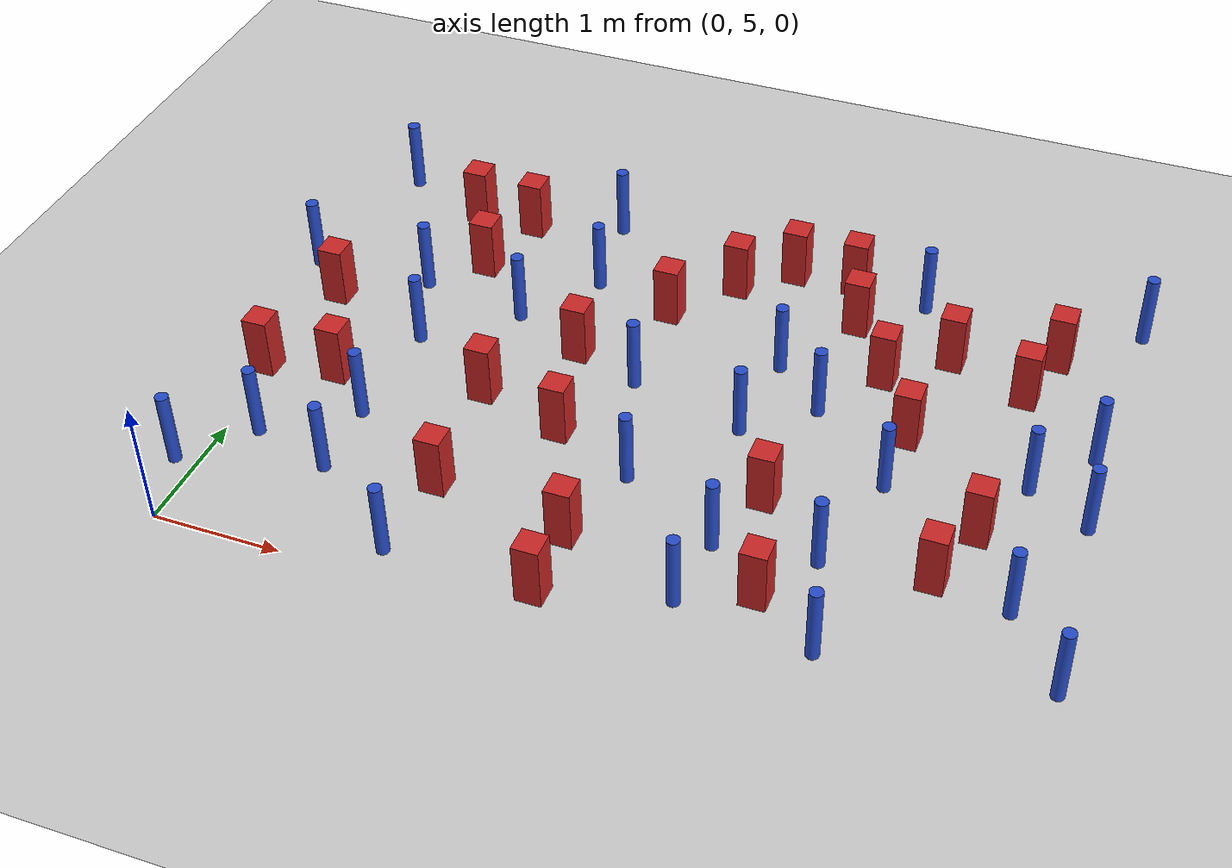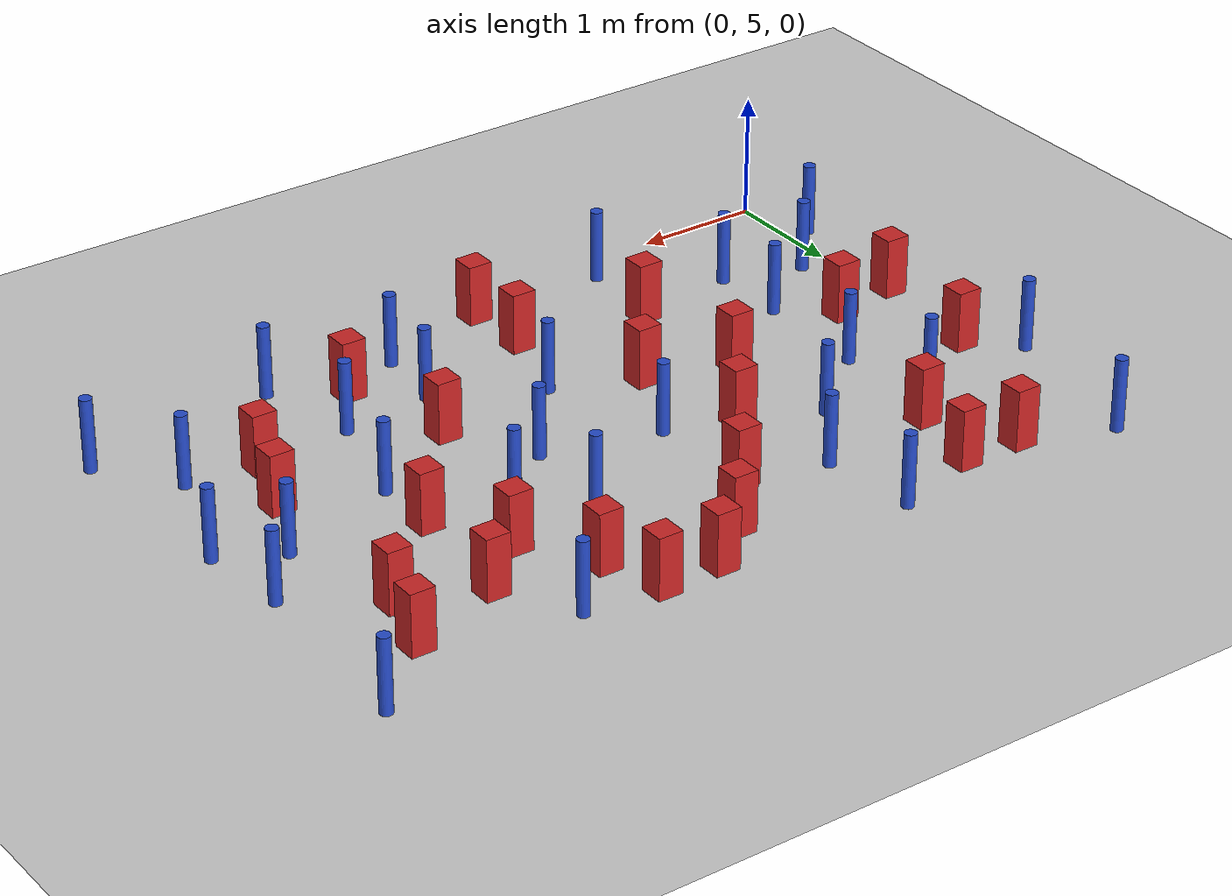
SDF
<sdf version="1.6">
 <world name="default">
  <model name="ground_plane">
   <static>1</static>
   <link name="link">
    <collision name="collision">
     <geometry><plane><normal>0 0 1</normal><size>100 100</size></plane></geometry>
     <surface><friction><ode><mu>100</mu><mu2>50</mu2></ode></friction></surface>
    </collision>
    <visual name="visual">
     <cast_shadows>0</cast_shadows>
     <geometry><plane><normal>0 0 1</normal><size>100 100</size></plane></geometry>
     <material>
      <ambient>1.0 1.0 1.0 1.0</ambient>
      <diffuse>0.8 0.8 0.8 1.0</diffuse>
      <specular>0.01 0.01 0.01 1.000000</specular>
     </material>
    </visual>
   </link>
  </model>
  <model name="square_post_obstacle0">
   <static>true</static>
   <pose>0.0412919475653 7.74487756487 -4.36207812815e-07 3.75137919937e-06 9.77721102514e-07 2.47381364184e-05</pose>
   <link name="link">
    <pose>0 0 0.25 0 -0 0</pose>
    <inertial>
     <mass>100</mass>
     <inertia>
      <ixx>0.166667</ixx>
      <ixy>0</ixy>
      <ixz>0</ixz>
      <iyy>0.166667</iyy>
      <iyz>0</iyz>
      <izz>0.166667</izz>
     </inertia>
    </inertial>
    <collision name="collision"><geometry><box><size>.2 .2 .5</size></box></geometry></collision>
    <visual name="visual">
     <geometry><box><size>.2 .2 .5</size></box></geometry>
     <material>
      <script><name>Gazebo/Red</name><uri>file://media/materials/scripts/gazebo.material</uri></script>
     </material>
    </visual>
   </link>
  </model>
  <model name="pole_obstacle18">
   <static>true</static>
   <pose>2.68279950998 7.52873391197 -3.09024884793e-07 -7.19054271912e-07 -2.11315075134e-07 -1.93935509266e-07</pose>
   <link name="link">
    <pose>0 0 0.3 0 -0 0</pose>
    <inertial>
     <mass>1</mass>
     <inertia><ixx>0.145833</ixx><ixy>0</ixy><ixz>0</ixz><iyy>0.145833</iyy><iyz>0</iyz><izz>0.125</izz></inertia>
    </inertial>
    <collision name="collision">
     <geometry><cylinder><radius>0.05</radius><length>.6</length></cylinder></geometry>
    </collision>
    <visual name="visual">
     <geometry><cylinder><radius>0.05</radius><length>.6</length></cylinder></geometry>
     <material>
      <script><name>Gazebo/Blue</name><uri>file://media/materials/scripts/gazebo.material</uri></script>
     </material>
    </visual>
   </link>
  </model>
  <model name="pole_obstacle19">
   <static>true</static>
   <pose>0.890356789244 5.87134559342 -3.09024884793e-07 -7.19054271912e-07 -2.11315075129e-07 -1.93935509261e-07</pose>
   <link name="link">
    <pose>0 0 0.3 0 -0 0</pose>
    <inertial>
     <mass>1</mass>
     <inertia><ixx>0.145833</ixx><ixy>0</ixy><ixz>0</ixz><iyy>0.145833</iyy><iyz>0</iyz><izz>0.125</izz></inertia>
    </inertial>
    <collision name="collision">
     <geometry><cylinder><radius>0.05</radius><length>.6</length></cylinder></geometry>
    </collision>
    <visual name="visual">
     <geometry><cylinder><radius>0.05</radius><length>.6</length></cylinder></geometry>
     <material>
      <script><name>Gazebo/Blue</name><uri>file://media/materials/scripts/gazebo.material</uri></script>
     </material>
    </visual>
   </link>
  </model>
  <model name="square_post_obstacle15">
   <static>true</static>
   <pose>5.34885255256 6.27011187974 -4.36207812815e-07 3.75137919937e-06 9.77721102514e-07 2.47381364184e-05</pose>
   <link name="link">
    <pose>0 0 0.25 0 -0 0</pose>
    <inertial>
     <mass>100</mass>
     <inertia>
      <ixx>0.166667</ixx>
      <ixy>0</ixy>
      <ixz>0</ixz>
      <iyy>0.166667</iyy>
      <iyz>0</iyz>
      <izz>0.166667</izz>
     </inertia>
    </inertial>
    <collision name="collision"><geometry><box><size>.2 .2 .5</size></box></geometry></collision>
    <visual name="visual">
     <geometry><box><size>.2 .2 .5</size></box></geometry>
     <material>
      <script><name>Gazebo/Red</name><uri>file://media/materials/scripts/gazebo.material</uri></script>
     </material>
    </visual>
   </link>
  </model>
  <model name="pole_obstacle29">
   <static>true</static>
   <pose>5.78170784159 7.39839750086 -3.09024884793e-07 -7.19054271911e-07 -2.1131507516e-07 -1.93935509277e-07</pose>
   <link name="link">
    <pose>0 0 0.3 0 -0 0</pose>
    <inertial>
     <mass>1</mass>
     <inertia><ixx>0.145833</ixx><ixy>0</ixy><ixz>0</ixz><iyy>0.145833</iyy><iyz>0</iyz><izz>0.125</izz></inertia>
    </inertial>
    <collision name="collision">
     <geometry><cylinder><radius>0.05</radius><length>.6</length></cylinder></geometry>
    </collision>
    <visual name="visual">
     <geometry><cylinder><radius>0.05</radius><length>.6</length></cylinder></geometry>
     <material>
      <script><name>Gazebo/Blue</name><uri>file://media/materials/scripts/gazebo.material</uri></script>
     </material>
    </visual>
   </link>
  </model>
  <model name="square_post_obstacle27">
   <static>true</static>
   <pose>2.35359389487 6.81142448107 -4.36207812815e-07 3.75137919937e-06 9.77721102514e-07 2.47381364184e-05</pose>
   <link name="link">
    <pose>0 0 0.25 0 -0 0</pose>
    <inertial>
     <mass>100</mass>
     <inertia>
      <ixx>0.166667</ixx>
      <ixy>0</ixy>
      <ixz>0</ixz>
      <iyy>0.166667</iyy>
      <iyz>0</iyz>
      <izz>0.166667</izz>
     </inertia>
    </inertial>
    <collision name="collision"><geometry><box><size>.2 .2 .5</size></box></geometry></collision>
    <visual name="visual">
     <geometry><box><size>.2 .2 .5</size></box></geometry>
     <material>
      <script><name>Gazebo/Red</name><uri>file://media/materials/scripts/gazebo.material</uri></script>
     </material>
    </visual>
   </link>
  </model>
  <model name="square_post_obstacle28">
   <static>true</static>
   <pose>1.65492535848 7.02543720147 -4.36207812815e-07 3.75137919937e-06 9.77721102514e-07 2.47381364184e-05</pose>
   <link name="link">
    <pose>0 0 0.25 0 -0 0</pose>
    <inertial>
     <mass>100</mass>
     <inertia>
      <ixx>0.166667</ixx>
      <ixy>0</ixy>
      <ixz>0</ixz>
      <iyy>0.166667</iyy>
      <iyz>0</iyz>
      <izz>0.166667</izz>
     </inertia>
    </inertial>
    <collision name="collision"><geometry><box><size>.2 .2 .5</size></box></geometry></collision>
    <visual name="visual">
     <geometry><box><size>.2 .2 .5</size></box></geometry>
     <material>
      <script><name>Gazebo/Red</name><uri>file://media/materials/scripts/gazebo.material</uri></script>
     </material>
    </visual>
   </link>
  </model>
  <model name="square_post_obstacle29">
   <static>true</static>
   <pose>2.8286833973 5.2454532795 -4.36207812815e-07 3.75137919937e-06 9.77721102514e-07 2.47381364184e-05</pose>
   <link name="link">
    <pose>0 0 0.25 0 -0 0</pose>
    <inertial>
     <mass>100</mass>
     <inertia>
      <ixx>0.166667</ixx>
      <ixy>0</ixy>
      <ixz>0</ixz>
      <iyy>0.166667</iyy>
      <iyz>0</iyz>
      <izz>0.166667</izz>
     </inertia>
    </inertial>
    <collision name="collision"><geometry><box><size>.2 .2 .5</size></box></geometry></collision>
    <visual name="visual">
     <geometry><box><size>.2 .2 .5</size></box></geometry>
     <material>
      <script><name>Gazebo/Red</name><uri>file://media/materials/scripts/gazebo.material</uri></script>
     </material>
    </visual>
   </link>
  </model>
  <model name="square_post_obstacle35">
   <static>true</static>
   <pose>5.54072011842 8.36594991279 -4.36207812815e-07 3.75137919937e-06 9.77721102514e-07 2.47381364184e-05</pose>
   <link name="link">
    <pose>0 0 0.25 0 -0 0</pose>
    <inertial>
     <mass>100</mass>
     <inertia>
      <ixx>0.166667</ixx>
      <ixy>0</ixy>
      <ixz>0</ixz>
      <iyy>0.166667</iyy>
      <iyz>0</iyz>
      <izz>0.166667</izz>
     </inertia>
    </inertial>
    <collision name="collision"><geometry><box><size>.2 .2 .5</size></box></geometry></collision>
    <visual name="visual">
     <geometry><box><size>.2 .2 .5</size></box></geometry>
     <material>
      <script><name>Gazebo/Red</name><uri>file://media/materials/scripts/gazebo.material</uri></script>
     </material>
    </visual>
   </link>
  </model>
  <model name="square_post_obstacle37">
   <static>true</static>
   <pose>1.01999393397 8.48975095778 -4.36207812815e-07 3.75137919937e-06 9.77721102514e-07 2.47381364184e-05</pose>
   <link name="link">
    <pose>0 0 0.25 0 -0 0</pose>
    <inertial>
     <mass>100</mass>
     <inertia>
      <ixx>0.166667</ixx>
      <ixy>0</ixy>
      <ixz>0</ixz>
      <iyy>0.166667</iyy>
      <iyz>0</iyz>
      <izz>0.166667</izz>
     </inertia>
    </inertial>
    <collision name="collision"><geometry><box><size>.2 .2 .5</size></box></geometry></collision>
    <visual name="visual">
     <geometry><box><size>.2 .2 .5</size></box></geometry>
     <material>
      <script><name>Gazebo/Red</name><uri>file://media/materials/scripts/gazebo.material</uri></script>
     </material>
    </visual>
   </link>
  </model>
  <model name="square_post_obstacle40">
   <static>true</static>
   <pose>2.14338092535 7.71940443186 -4.36207812815e-07 3.75137919937e-06 9.77721102514e-07 2.47381364184e-05</pose>
   <link name="link">
    <pose>0 0 0.25 0 -0 0</pose>
    <inertial>
     <mass>100</mass>
     <inertia>
      <ixx>0.166667</ixx>
      <ixy>0</ixy>
      <ixz>0</ixz>
      <iyy>0.166667</iyy>
      <iyz>0</iyz>
      <izz>0.166667</izz>
     </inertia>
    </inertial>
    <collision name="collision"><geometry><box><size>.2 .2 .5</size></box></geometry></collision>
    <visual name="visual">
     <geometry><box><size>.2 .2 .5</size></box></geometry>
     <material>
      <script><name>Gazebo/Red</name><uri>file://media/materials/scripts/gazebo.material</uri></script>
     </material>
    </visual>
   </link>
  </model>
  <model name="pole_obstacle58">
   <static>true</static>
   <pose>1.68124011507 5.26321317155 -3.09024884793e-07 -7.19054271912e-07 -2.11315075134e-07 -1.93935509265e-07</pose>
   <link name="link">
    <pose>0 0 0.3 0 -0 0</pose>
    <inertial>
     <mass>1</mass>
     <inertia><ixx>0.145833</ixx><ixy>0</ixy><ixz>0</ixz><iyy>0.145833</iyy><iyz>0</iyz><izz>0.125</izz></inertia>
    </inertial>
    <collision name="collision">
     <geometry><cylinder><radius>0.05</radius><length>.6</length></cylinder></geometry>
    </collision>
    <visual name="visual">
     <geometry><cylinder><radius>0.05</radius><length>.6</length></cylinder></geometry>
     <material>
      <script><name>Gazebo/Blue</name><uri>file://media/materials/scripts/gazebo.material</uri></script>
     </material>
    </visual>
   </link>
  </model>
  <model name="pole_obstacle64">
   <static>true</static>
   <pose>-0.183026312813 5.58175883357 -3.09024884793e-07 -7.19054271912e-07 -2.11315075131e-07 -1.93935509264e-07</pose>
   <link name="link">
    <pose>0 0 0.3 0 -0 0</pose>
    <inertial>
     <mass>1</mass>
     <inertia><ixx>0.145833</ixx><ixy>0</ixy><ixz>0</ixz><iyy>0.145833</iyy><iyz>0</iyz><izz>0.125</izz></inertia>
    </inertial>
    <collision name="collision">
     <geometry><cylinder><radius>0.05</radius><length>.6</length></cylinder></geometry>
    </collision>
    <visual name="visual">
     <geometry><cylinder><radius>0.05</radius><length>.6</length></cylinder></geometry>
     <material>
      <script><name>Gazebo/Blue</name><uri>file://media/materials/scripts/gazebo.material</uri></script>
     </material>
    </visual>
   </link>
  </model>
  <model name="pole_obstacle67">
   <static>true</static>
   <pose>3.61485914153 7.29139319255 -3.09024884793e-07 -7.19054271912e-07 -2.11315075134e-07 -1.93935509266e-07</pose>
   <link name="link">
    <pose>0 0 0.3 0 -0 0</pose>
    <inertial>
     <mass>1</mass>
     <inertia><ixx>0.145833</ixx><ixy>0</ixy><ixz>0</ixz><iyy>0.145833</iyy><iyz>0</iyz><izz>0.125</izz></inertia>
    </inertial>
    <collision name="collision">
     <geometry><cylinder><radius>0.05</radius><length>.6</length></cylinder></geometry>
    </collision>
    <visual name="visual">
     <geometry><cylinder><radius>0.05</radius><length>.6</length></cylinder></geometry>
     <material>
      <script><name>Gazebo/Blue</name><uri>file://media/materials/scripts/gazebo.material</uri></script>
     </material>
    </visual>
   </link>
  </model>
  <model name="square_post_obstacle55">
   <static>true</static>
   <pose>0.494893646037 6.8507930311 -4.36207812815e-07 3.75137919937e-06 9.77721102514e-07 2.47381364184e-05</pose>
   <link name="link">
    <pose>0 0 0.25 0 -0 0</pose>
    <inertial>
     <mass>100</mass>
     <inertia>
      <ixx>0.166667</ixx>
      <ixy>0</ixy>
      <ixz>0</ixz>
      <iyy>0.166667</iyy>
      <iyz>0</iyz>
      <izz>0.166667</izz>
     </inertia>
    </inertial>
    <collision name="collision"><geometry><box><size>.2 .2 .5</size></box></geometry></collision>
    <visual name="visual">
     <geometry><box><size>.2 .2 .5</size></box></geometry>
     <material>
      <script><name>Gazebo/Red</name><uri>file://media/materials/scripts/gazebo.material</uri></script>
     </material>
    </visual>
   </link>
  </model>
  <model name="square_post_obstacle57">
   <static>true</static>
   <pose>3.4485562512 9.24732449354 -4.36207812815e-07 3.75137919937e-06 9.77721102514e-07 2.47381364184e-05</pose>
   <link name="link">
    <pose>0 0 0.25 0 -0 0</pose>
    <inertial>
     <mass>100</mass>
     <inertia>
      <ixx>0.166667</ixx>
      <ixy>0</ixy>
      <ixz>0</ixz>
      <iyy>0.166667</iyy>
      <iyz>0</iyz>
      <izz>0.166667</izz>
     </inertia>
    </inertial>
    <collision name="collision"><geometry><box><size>.2 .2 .5</size></box></geometry></collision>
    <visual name="visual">
     <geometry><box><size>.2 .2 .5</size></box></geometry>
     <material>
      <script><name>Gazebo/Red</name><uri>file://media/materials/scripts/gazebo.material</uri></script>
     </material>
    </visual>
   </link>
  </model>
  <model name="square_post_obstacle62">
   <static>true</static>
   <pose>1.74880818578 5.98662325395 -4.36207812815e-07 3.75137919937e-06 9.77721102514e-07 2.47381364184e-05</pose>
   <link name="link">
    <pose>0 0 0.25 0 -0 0</pose>
    <inertial>
     <mass>100</mass>
     <inertia>
      <ixx>0.166667</ixx>
      <ixy>0</ixy>
      <ixz>0</ixz>
      <iyy>0.166667</iyy>
      <iyz>0</iyz>
      <izz>0.166667</izz>
     </inertia>
    </inertial>
    <collision name="collision"><geometry><box><size>.2 .2 .5</size></box></geometry></collision>
    <visual name="visual">
     <geometry><box><size>.2 .2 .5</size></box></geometry>
     <material>
      <script><name>Gazebo/Red</name><uri>file://media/materials/scripts/gazebo.material</uri></script>
     </material>
    </visual>
   </link>
  </model>
  <model name="square_post_obstacle70">
   <static>true</static>
   <pose>4.01961030803 6.63754758699 -4.36207812815e-07 3.75137919937e-06 9.77721102514e-07 2.47381364184e-05</pose>
   <link name="link">
    <pose>0 0 0.25 0 -0 0</pose>
    <inertial>
     <mass>100</mass>
     <inertia>
      <ixx>0.166667</ixx>
      <ixy>0</ixy>
      <ixz>0</ixz>
      <iyy>0.166667</iyy>
      <iyz>0</iyz>
      <izz>0.166667</izz>
     </inertia>
    </inertial>
    <collision name="collision"><geometry><box><size>.2 .2 .5</size></box></geometry></collision>
    <visual name="visual">
     <geometry><box><size>.2 .2 .5</size></box></geometry>
     <material>
      <script><name>Gazebo/Red</name><uri>file://media/materials/scripts/gazebo.material</uri></script>
     </material>
    </visual>
   </link>
  </model>
  <model name="pole_obstacle82">
   <static>true</static>
   <pose>3.74965852438 5.49984510414 -3.09024884793e-07 -7.19054271912e-07 -2.11315075134e-07 -1.93935509266e-07</pose>
   <link name="link">
    <pose>0 0 0.3 0 -0 0</pose>
    <inertial>
     <mass>1</mass>
     <inertia><ixx>0.145833</ixx><ixy>0</ixy><ixz>0</ixz><iyy>0.145833</iyy><iyz>0</iyz><izz>0.125</izz></inertia>
    </inertial>
    <collision name="collision">
     <geometry><cylinder><radius>0.05</radius><length>.6</length></cylinder></geometry>
    </collision>
    <visual name="visual">
     <geometry><cylinder><radius>0.05</radius><length>.6</length></cylinder></geometry>
     <material>
      <script><name>Gazebo/Blue</name><uri>file://media/materials/scripts/gazebo.material</uri></script>
     </material>
    </visual>
   </link>
  </model>
  <model name="pole_obstacle83">
   <static>true</static>
   <pose>-0.0627920377925 9.40811231601 -3.09024884793e-07 -7.19054271911e-07 -2.11315075159e-07 -1.93935509278e-07</pose>
   <link name="link">
    <pose>0 0 0.3 0 -0 0</pose>
    <inertial>
     <mass>1</mass>
     <inertia><ixx>0.145833</ixx><ixy>0</ixy><ixz>0</ixz><iyy>0.145833</iyy><iyz>0</iyz><izz>0.125</izz></inertia>
    </inertial>
    <collision name="collision">
     <geometry><cylinder><radius>0.05</radius><length>.6</length></cylinder></geometry>
    </collision>
    <visual name="visual">
     <geometry><cylinder><radius>0.05</radius><length>.6</length></cylinder></geometry>
     <material>
      <script><name>Gazebo/Blue</name><uri>file://media/materials/scripts/gazebo.material</uri></script>
     </material>
    </visual>
   </link>
  </model>
  <model name="square_post_obstacle73">
   <static>true</static>
   <pose>4.80950502552 7.62535944085 -4.36207812815e-07 3.75137919937e-06 9.77721102514e-07 2.47381364184e-05</pose>
   <link name="link">
    <pose>0 0 0.25 0 -0 0</pose>
    <inertial>
     <mass>100</mass>
     <inertia>
      <ixx>0.166667</ixx>
      <ixy>0</ixy>
      <ixz>0</ixz>
      <iyy>0.166667</iyy>
      <iyz>0</iyz>
      <izz>0.166667</izz>
     </inertia>
    </inertial>
    <collision name="collision"><geometry><box><size>.2 .2 .5</size></box></geometry></collision>
    <visual name="visual">
     <geometry><box><size>.2 .2 .5</size></box></geometry>
     <material>
      <script><name>Gazebo/Red</name><uri>file://media/materials/scripts/gazebo.material</uri></script>
     </material>
    </visual>
   </link>
  </model>
  <model name="pole_obstacle87">
   <static>true</static>
   <pose>1.97369921132 8.59333294751 -3.09024884793e-07 -7.19054271912e-07 -2.11315075145e-07 -1.93935509269e-07</pose>
   <link name="link">
    <pose>0 0 0.3 0 -0 0</pose>
    <inertial>
     <mass>1</mass>
     <inertia><ixx>0.145833</ixx><ixy>0</ixy><ixz>0</ixz><iyy>0.145833</iyy><iyz>0</iyz><izz>0.125</izz></inertia>
    </inertial>
    <collision name="collision">
     <geometry><cylinder><radius>0.05</radius><length>.6</length></cylinder></geometry>
    </collision>
    <visual name="visual">
     <geometry><cylinder><radius>0.05</radius><length>.6</length></cylinder></geometry>
     <material>
      <script><name>Gazebo/Blue</name><uri>file://media/materials/scripts/gazebo.material</uri></script>
     </material>
    </visual>
   </link>
  </model>
  <model name="pole_obstacle94">
   <static>true</static>
   <pose>4.79067816264 7.07022464164 -3.09024884793e-07 -7.19054271911e-07 -2.1131507516e-07 -1.93935509277e-07</pose>
   <link name="link">
    <pose>0 0 0.3 0 -0 0</pose>
    <inertial>
     <mass>1</mass>
     <inertia><ixx>0.145833</ixx><ixy>0</ixy><ixz>0</ixz><iyy>0.145833</iyy><iyz>0</iyz><izz>0.125</izz></inertia>
    </inertial>
    <collision name="collision">
     <geometry><cylinder><radius>0.05</radius><length>.6</length></cylinder></geometry>
    </collision>
    <visual name="visual">
     <geometry><cylinder><radius>0.05</radius><length>.6</length></cylinder></geometry>
     <material>
      <script><name>Gazebo/Blue</name><uri>file://media/materials/scripts/gazebo.material</uri></script>
     </material>
    </visual>
   </link>
  </model>
  <model name="square_post_obstacle87">
   <static>true</static>
   <pose>5.6931805938 8.88306579543 -4.36207812815e-07 3.75137919937e-06 9.77721102514e-07 2.47381364184e-05</pose>
   <link name="link">
    <pose>0 0 0.25 0 -0 0</pose>
    <inertial>
     <mass>100</mass>
     <inertia>
      <ixx>0.166667</ixx>
      <ixy>0</ixy>
      <ixz>0</ixz>
      <iyy>0.166667</iyy>
      <iyz>0</iyz>
      <izz>0.166667</izz>
     </inertia>
    </inertial>
    <collision name="collision"><geometry><box><size>.2 .2 .5</size></box></geometry></collision>
    <visual name="visual">
     <geometry><box><size>.2 .2 .5</size></box></geometry>
     <material>
      <script><name>Gazebo/Red</name><uri>file://media/materials/scripts/gazebo.material</uri></script>
     </material>
    </visual>
   </link>
  </model>
  <model name="pole_obstacle95">
   <static>true</static>
   <pose>6.35892363662 5.5872737955 -3.09024884793e-07 -7.19054271911e-07 -2.1131507516e-07 -1.93935509277e-07</pose>
   <link name="link">
    <pose>0 0 0.3 0 -0 0</pose>
    <inertial>
     <mass>1</mass>
     <inertia><ixx>0.145833</ixx><ixy>0</ixy><ixz>0</ixz><iyy>0.145833</iyy><iyz>0</iyz><izz>0.125</izz></inertia>
    </inertial>
    <collision name="collision">
     <geometry><cylinder><radius>0.05</radius><length>.6</length></cylinder></geometry>
    </collision>
    <visual name="visual">
     <geometry><cylinder><radius>0.05</radius><length>.6</length></cylinder></geometry>
     <material>
      <script><name>Gazebo/Blue</name><uri>file://media/materials/scripts/gazebo.material</uri></script>
     </material>
    </visual>
   </link>
  </model>
  <model name="square_post_obstacle96">
   <static>true</static>
   <pose>4.10228199096 8.77901406125 -4.36207812815e-07 3.75137919937e-06 9.77721102514e-07 2.47381364184e-05</pose>
   <link name="link">
    <pose>0 0 0.25 0 -0 0</pose>
    <inertial>
     <mass>100</mass>
     <inertia>
      <ixx>0.166667</ixx>
      <ixy>0</ixy>
      <ixz>0</ixz>
      <iyy>0.166667</iyy>
      <iyz>0</iyz>
      <izz>0.166667</izz>
     </inertia>
    </inertial>
    <collision name="collision"><geometry><box><size>.2 .2 .5</size></box></geometry></collision>
    <visual name="visual">
     <geometry><box><size>.2 .2 .5</size></box></geometry>
     <material>
      <script><name>Gazebo/Red</name><uri>file://media/materials/scripts/gazebo.material</uri></script>
     </material>
    </visual>
   </link>
  </model>
  <model name="pole_obstacle105">
   <static>true</static>
   <pose>4.55680558601 9.19201890814 -3.09024884793e-07 -7.19054271912e-07 -2.1131507513e-07 -1.93935509261e-07</pose>
   <link name="link">
    <pose>0 0 0.3 0 -0 0</pose>
    <inertial>
     <mass>1</mass>
     <inertia><ixx>0.145833</ixx><ixy>0</ixy><ixz>0</ixz><iyy>0.145833</iyy><iyz>0</iyz><izz>0.125</izz></inertia>
    </inertial>
    <collision name="collision">
     <geometry><cylinder><radius>0.05</radius><length>.6</length></cylinder></geometry>
    </collision>
    <visual name="visual">
     <geometry><cylinder><radius>0.05</radius><length>.6</length></cylinder></geometry>
     <material>
      <script><name>Gazebo/Blue</name><uri>file://media/materials/scripts/gazebo.material</uri></script>
     </material>
    </visual>
   </link>
  </model>
  <model name="pole_obstacle108">
   <static>true</static>
   <pose>3.67844915728 8.09132180803 -3.09024884848e-07 -7.19054271902e-07 -2.11315075199e-07 -1.93935509286e-07</pose>
   <link name="link">
    <pose>0 0 0.3 0 -0 0</pose>
    <inertial>
     <mass>1</mass>
     <inertia><ixx>0.145833</ixx><ixy>0</ixy><ixz>0</ixz><iyy>0.145833</iyy><iyz>0</iyz><izz>0.125</izz></inertia>
    </inertial>
    <collision name="collision">
     <geometry><cylinder><radius>0.05</radius><length>.6</length></cylinder></geometry>
    </collision>
    <visual name="visual">
     <geometry><cylinder><radius>0.05</radius><length>.6</length></cylinder></geometry>
     <material>
      <script><name>Gazebo/Blue</name><uri>file://media/materials/scripts/gazebo.material</uri></script>
     </material>
    </visual>
   </link>
  </model>
  <model name="square_post_obstacle106">
   <static>true</static>
   <pose>2.64403068726 8.41913364846 -4.36207812815e-07 3.75137919937e-06 9.77721102514e-07 2.47381364184e-05</pose>
   <link name="link">
    <pose>0 0 0.25 0 -0 0</pose>
    <inertial>
     <mass>100</mass>
     <inertia>
      <ixx>0.166667</ixx>
      <ixy>0</ixy>
      <ixz>0</ixz>
      <iyy>0.166667</iyy>
      <iyz>0</iyz>
      <izz>0.166667</izz>
     </inertia>
    </inertial>
    <collision name="collision"><geometry><box><size>.2 .2 .5</size></box></geometry></collision>
    <visual name="visual">
     <geometry><box><size>.2 .2 .5</size></box></geometry>
     <material>
      <script><name>Gazebo/Red</name><uri>file://media/materials/scripts/gazebo.material</uri></script>
     </material>
    </visual>
   </link>
  </model>
  <model name="square_post_obstacle109">
   <static>true</static>
   <pose>0.665729442319 9.14126623028 -4.36207812815e-07 3.75137919937e-06 9.77721102514e-07 2.47381364184e-05</pose>
   <link name="link">
    <pose>0 0 0.25 0 -0 0</pose>
    <inertial>
     <mass>100</mass>
     <inertia>
      <ixx>0.166667</ixx>
      <ixy>0</ixy>
      <ixz>0</ixz>
      <iyy>0.166667</iyy>
      <iyz>0</iyz>
      <izz>0.166667</izz>
     </inertia>
    </inertial>
    <collision name="collision"><geometry><box><size>.2 .2 .5</size></box></geometry></collision>
    <visual name="visual">
     <geometry><box><size>.2 .2 .5</size></box></geometry>
     <material>
      <script><name>Gazebo/Red</name><uri>file://media/materials/scripts/gazebo.material</uri></script>
     </material>
    </visual>
   </link>
  </model>
  <model name="pole_obstacle115">
   <static>true</static>
   <pose>0.896883783461 7.46471340998 -3.09024884793e-07 -7.19054271912e-07 -2.11315075129e-07 -1.93935509261e-07</pose>
   <link name="link">
    <pose>0 0 0.3 0 -0 0</pose>
    <inertial>
     <mass>1</mass>
     <inertia><ixx>0.145833</ixx><ixy>0</ixy><ixz>0</ixz><iyy>0.145833</iyy><iyz>0</iyz><izz>0.125</izz></inertia>
    </inertial>
    <collision name="collision">
     <geometry><cylinder><radius>0.05</radius><length>.6</length></cylinder></geometry>
    </collision>
    <visual name="visual">
     <geometry><cylinder><radius>0.05</radius><length>.6</length></cylinder></geometry>
     <material>
      <script><name>Gazebo/Blue</name><uri>file://media/materials/scripts/gazebo.material</uri></script>
     </material>
    </visual>
   </link>
  </model>
  <model name="square_post_obstacle120">
   <static>true</static>
   <pose>2.81380858227 5.81879462653 -4.36207812815e-07 3.75137919937e-06 9.77721102514e-07 2.47381364184e-05</pose>
   <link name="link">
    <pose>0 0 0.25 0 -0 0</pose>
    <inertial>
     <mass>100</mass>
     <inertia>
      <ixx>0.166667</ixx>
      <ixy>0</ixy>
      <ixz>0</ixz>
      <iyy>0.166667</iyy>
      <iyz>0</iyz>
      <izz>0.166667</izz>
     </inertia>
    </inertial>
    <collision name="collision"><geometry><box><size>.2 .2 .5</size></box></geometry></collision>
    <visual name="visual">
     <geometry><box><size>.2 .2 .5</size></box></geometry>
     <material>
      <script><name>Gazebo/Red</name><uri>file://media/materials/scripts/gazebo.material</uri></script>
     </material>
    </visual>
   </link>
  </model>
  <model name="pole_obstacle121">
   <static>true</static>
   <pose>3.01276139594 6.52592244611 -3.09024884793e-07 -7.19054271912e-07 -2.11315075134e-07 -1.93935509266e-07</pose>
   <link name="link">
    <pose>0 0 0.3 0 -0 0</pose>
    <inertial>
     <mass>1</mass>
     <inertia><ixx>0.145833</ixx><ixy>0</ixy><ixz>0</ixz><iyy>0.145833</iyy><iyz>0</iyz><izz>0.125</izz></inertia>
    </inertial>
    <collision name="collision">
     <geometry><cylinder><radius>0.05</radius><length>.6</length></cylinder></geometry>
    </collision>
    <visual name="visual">
     <geometry><cylinder><radius>0.05</radius><length>.6</length></cylinder></geometry>
     <material>
      <script><name>Gazebo/Blue</name><uri>file://media/materials/scripts/gazebo.material</uri></script>
     </material>
    </visual>
   </link>
  </model>
  <model name="pole_obstacle122">
   <static>true</static>
   <pose>4.77145937665 5.37719816482 -3.09024884793e-07 -7.19054271911e-07 -2.1131507516e-07 -1.93935509277e-07</pose>
   <link name="link">
    <pose>0 0 0.3 0 -0 0</pose>
    <inertial>
     <mass>1</mass>
     <inertia><ixx>0.145833</ixx><ixy>0</ixy><ixz>0</ixz><iyy>0.145833</iyy><iyz>0</iyz><izz>0.125</izz></inertia>
    </inertial>
    <collision name="collision">
     <geometry><cylinder><radius>0.05</radius><length>.6</length></cylinder></geometry>
    </collision>
    <visual name="visual">
     <geometry><cylinder><radius>0.05</radius><length>.6</length></cylinder></geometry>
     <material>
      <script><name>Gazebo/Blue</name><uri>file://media/materials/scripts/gazebo.material</uri></script>
     </material>
    </visual>
   </link>
  </model>
  <model name="pole_obstacle128">
   <static>true</static>
   <pose>5.91640252449 6.17535345245 -3.09024884793e-07 -7.19054271911e-07 -2.1131507516e-07 -1.93935509277e-07</pose>
   <link name="link">
    <pose>0 0 0.3 0 -0 0</pose>
    <inertial>
     <mass>1</mass>
     <inertia><ixx>0.145833</ixx><ixy>0</ixy><ixz>0</ixz><iyy>0.145833</iyy><iyz>0</iyz><izz>0.125</izz></inertia>
    </inertial>
    <collision name="collision">
     <geometry><cylinder><radius>0.05</radius><length>.6</length></cylinder></geometry>
    </collision>
    <visual name="visual">
     <geometry><cylinder><radius>0.05</radius><length>.6</length></cylinder></geometry>
     <material>
      <script><name>Gazebo/Blue</name><uri>file://media/materials/scripts/gazebo.material</uri></script>
     </material>
    </visual>
   </link>
  </model>
  <model name="square_post_obstacle128">
   <static>true</static>
   <pose>4.26414446135 5.72328281906 -4.36207812815e-07 3.75137919937e-06 9.77721102514e-07 2.47381364184e-05</pose>
   <link name="link">
    <pose>0 0 0.25 0 -0 0</pose>
    <inertial>
     <mass>100</mass>
     <inertia>
      <ixx>0.166667</ixx>
      <ixy>0</ixy>
      <ixz>0</ixz>
      <iyy>0.166667</iyy>
      <iyz>0</iyz>
      <izz>0.166667</izz>
     </inertia>
    </inertial>
    <collision name="collision"><geometry><box><size>.2 .2 .5</size></box></geometry></collision>
    <visual name="visual">
     <geometry><box><size>.2 .2 .5</size></box></geometry>
     <material>
      <script><name>Gazebo/Red</name><uri>file://media/materials/scripts/gazebo.material</uri></script>
     </material>
    </visual>
   </link>
  </model>
  <model name="square_post_obstacle129">
   <static>true</static>
   <pose>4.46530985761 8.22040393605 -4.36207812815e-07 3.75137919937e-06 9.77721102514e-07 2.47381364184e-05</pose>
   <link name="link">
    <pose>0 0 0.25 0 -0 0</pose>
    <inertial>
     <mass>100</mass>
     <inertia>
      <ixx>0.166667</ixx>
      <ixy>0</ixy>
      <ixz>0</ixz>
      <iyy>0.166667</iyy>
      <iyz>0</iyz>
      <izz>0.166667</izz>
     </inertia>
    </inertial>
    <collision name="collision"><geometry><box><size>.2 .2 .5</size></box></geometry></collision>
    <visual name="visual">
     <geometry><box><size>.2 .2 .5</size></box></geometry>
     <material>
      <script><name>Gazebo/Red</name><uri>file://media/materials/scripts/gazebo.material</uri></script>
     </material>
    </visual>
   </link>
  </model>
  <model name="square_post_obstacle134">
   <static>true</static>
   <pose>3.05634149604 8.92110873172 -4.36207812815e-07 3.75137919937e-06 9.77721102514e-07 2.47381364184e-05</pose>
   <link name="link">
    <pose>0 0 0.25 0 -0 0</pose>
    <inertial>
     <mass>100</mass>
     <inertia>
      <ixx>0.166667</ixx>
      <ixy>0</ixy>
      <ixz>0</ixz>
      <iyy>0.166667</iyy>
      <iyz>0</iyz>
      <izz>0.166667</izz>
     </inertia>
    </inertial>
    <collision name="collision"><geometry><box><size>.2 .2 .5</size></box></geometry></collision>
    <visual name="visual">
     <geometry><box><size>.2 .2 .5</size></box></geometry>
     <material>
      <script><name>Gazebo/Red</name><uri>file://media/materials/scripts/gazebo.material</uri></script>
     </material>
    </visual>
   </link>
  </model>
  <model name="pole_obstacle152">
   <static>true</static>
   <pose>1.87776139054 9.36122068101 -3.09024884793e-07 -7.19054271912e-07 -2.1131507515e-07 -1.93935509273e-07</pose>
   <link name="link">
    <pose>0 0 0.3 0 -0 0</pose>
    <inertial>
     <mass>1</mass>
     <inertia><ixx>0.145833</ixx><ixy>0</ixy><ixz>0</ixz><iyy>0.145833</iyy><iyz>0</iyz><izz>0.125</izz></inertia>
    </inertial>
    <collision name="collision">
     <geometry><cylinder><radius>0.05</radius><length>.6</length></cylinder></geometry>
    </collision>
    <visual name="visual">
     <geometry><cylinder><radius>0.05</radius><length>.6</length></cylinder></geometry>
     <material>
      <script><name>Gazebo/Blue</name><uri>file://media/materials/scripts/gazebo.material</uri></script>
     </material>
    </visual>
   </link>
  </model>
  <model name="pole_obstacle156">
   <static>true</static>
   <pose>1.529739786 7.98786821521 -3.09024884793e-07 -7.19054271912e-07 -2.1131507514e-07 -1.93935509267e-07</pose>
   <link name="link">
    <pose>0 0 0.3 0 -0 0</pose>
    <inertial>
     <mass>1</mass>
     <inertia><ixx>0.145833</ixx><ixy>0</ixy><ixz>0</ixz><iyy>0.145833</iyy><iyz>0</iyz><izz>0.125</izz></inertia>
    </inertial>
    <collision name="collision">
     <geometry><cylinder><radius>0.05</radius><length>.6</length></cylinder></geometry>
    </collision>
    <visual name="visual">
     <geometry><cylinder><radius>0.05</radius><length>.6</length></cylinder></geometry>
     <material>
      <script><name>Gazebo/Blue</name><uri>file://media/materials/scripts/gazebo.material</uri></script>
     </material>
    </visual>
   </link>
  </model>
  <model name="pole_obstacle159">
   <static>true</static>
   <pose>6.25907481387 7.14554679051 -3.09024884793e-07 -7.19054271911e-07 -2.1131507516e-07 -1.93935509277e-07</pose>
   <link name="link">
    <pose>0 0 0.3 0 -0 0</pose>
    <inertial>
     <mass>1</mass>
     <inertia><ixx>0.145833</ixx><ixy>0</ixy><ixz>0</ixz><iyy>0.145833</iyy><iyz>0</iyz><izz>0.125</izz></inertia>
    </inertial>
    <collision name="collision">
     <geometry><cylinder><radius>0.05</radius><length>.6</length></cylinder></geometry>
    </collision>
    <visual name="visual">
     <geometry><cylinder><radius>0.05</radius><length>.6</length></cylinder></geometry>
     <material>
      <script><name>Gazebo/Blue</name><uri>file://media/materials/scripts/gazebo.material</uri></script>
     </material>
    </visual>
   </link>
  </model>
  <model name="square_post_obstacle166">
   <static>true</static>
   <pose>-0.0693902886575 6.74822453362 -4.36207812815e-07 3.75137919937e-06 9.77721102514e-07 2.47381364184e-05</pose>
   <link name="link">
    <pose>0 0 0.25 0 -0 0</pose>
    <inertial>
     <mass>100</mass>
     <inertia>
      <ixx>0.166667</ixx>
      <ixy>0</ixy>
      <ixz>0</ixz>
      <iyy>0.166667</iyy>
      <iyz>0</iyz>
      <izz>0.166667</izz>
     </inertia>
    </inertial>
    <collision name="collision"><geometry><box><size>.2 .2 .5</size></box></geometry></collision>
    <visual name="visual">
     <geometry><box><size>.2 .2 .5</size></box></geometry>
     <material>
      <script><name>Gazebo/Red</name><uri>file://media/materials/scripts/gazebo.material</uri></script>
     </material>
    </visual>
   </link>
  </model>
  <model name="pole_obstacle169">
   <static>true</static>
   <pose>0.655068232253 8.11827651009 -3.09024884793e-07 -7.19054271911e-07 -2.11315075158e-07 -1.93935509277e-07</pose>
   <link name="link">
    <pose>0 0 0.3 0 -0 0</pose>
    <inertial>
     <mass>1</mass>
     <inertia><ixx>0.145833</ixx><ixy>0</ixy><ixz>0</ixz><iyy>0.145833</iyy><iyz>0</iyz><izz>0.125</izz></inertia>
    </inertial>
    <collision name="collision">
     <geometry><cylinder><radius>0.05</radius><length>.6</length></cylinder></geometry>
    </collision>
    <visual name="visual">
     <geometry><cylinder><radius>0.05</radius><length>.6</length></cylinder></geometry>
     <material>
      <script><name>Gazebo/Blue</name><uri>file://media/materials/scripts/gazebo.material</uri></script>
     </material>
    </visual>
   </link>
  </model>
  <model name="square_post_obstacle171">
   <static>true</static>
   <pose>5.53188753522 6.81576935402 -4.36207812815e-07 3.75137919937e-06 9.77721102514e-07 2.47381364184e-05</pose>
   <link name="link">
    <pose>0 0 0.25 0 -0 0</pose>
    <inertial>
     <mass>100</mass>
     <inertia>
      <ixx>0.166667</ixx>
      <ixy>0</ixy>
      <ixz>0</ixz>
      <iyy>0.166667</iyy>
      <iyz>0</iyz>
      <izz>0.166667</izz>
     </inertia>
    </inertial>
    <collision name="collision"><geometry><box><size>.2 .2 .5</size></box></geometry></collision>
    <visual name="visual">
     <geometry><box><size>.2 .2 .5</size></box></geometry>
     <material>
      <script><name>Gazebo/Red</name><uri>file://media/materials/scripts/gazebo.material</uri></script>
     </material>
    </visual>
   </link>
  </model>
  <model name="pole_obstacle171">
   <static>true</static>
   <pose>4.56393889542 6.18340786691 -3.09024884793e-07 -7.19054271911e-07 -2.1131507516e-07 -1.93935509277e-07</pose>
   <link name="link">
    <pose>0 0 0.3 0 -0 0</pose>
    <inertial>
     <mass>1</mass>
     <inertia><ixx>0.145833</ixx><ixy>0</ixy><ixz>0</ixz><iyy>0.145833</iyy><iyz>0</iyz><izz>0.125</izz></inertia>
    </inertial>
    <collision name="collision">
     <geometry><cylinder><radius>0.05</radius><length>.6</length></cylinder></geometry>
    </collision>
    <visual name="visual">
     <geometry><cylinder><radius>0.05</radius><length>.6</length></cylinder></geometry>
     <material>
      <script><name>Gazebo/Blue</name><uri>file://media/materials/scripts/gazebo.material</uri></script>
     </material>
    </visual>
   </link>
  </model>
  <model name="pole_obstacle184">
   <static>true</static>
   <pose>3.81776165209 6.09037063654 -3.09024884793e-07 -7.19054271912e-07 -2.11315075134e-07 -1.93935509266e-07</pose>
   <link name="link">
    <pose>0 0 0.3 0 -0 0</pose>
    <inertial>
     <mass>1</mass>
     <inertia><ixx>0.145833</ixx><ixy>0</ixy><ixz>0</ixz><iyy>0.145833</iyy><iyz>0</iyz><izz>0.125</izz></inertia>
    </inertial>
    <collision name="collision">
     <geometry><cylinder><radius>0.05</radius><length>.6</length></cylinder></geometry>
    </collision>
    <visual name="visual">
     <geometry><cylinder><radius>0.05</radius><length>.6</length></cylinder></geometry>
     <material>
      <script><name>Gazebo/Blue</name><uri>file://media/materials/scripts/gazebo.material</uri></script>
     </material>
    </visual>
   </link>
  </model>
  <model name="pole_obstacle186">
   <static>true</static>
   <pose>0.248306840544 6.05747580993 -3.09024884793e-07 -7.19054271912e-07 -2.11315075125e-07 -1.9393550926e-07</pose>
   <link name="link">
    <pose>0 0 0.3 0 -0 0</pose>
    <inertial>
     <mass>1</mass>
     <inertia><ixx>0.145833</ixx><ixy>0</ixy><ixz>0</ixz><iyy>0.145833</iyy><iyz>0</iyz><izz>0.125</izz></inertia>
    </inertial>
    <collision name="collision">
     <geometry><cylinder><radius>0.05</radius><length>.6</length></cylinder></geometry>
    </collision>
    <visual name="visual">
     <geometry><cylinder><radius>0.05</radius><length>.6</length></cylinder></geometry>
     <material>
      <script><name>Gazebo/Blue</name><uri>file://media/materials/scripts/gazebo.material</uri></script>
     </material>
    </visual>
   </link>
  </model>
  <model name="square_post_obstacle191">
   <static>true</static>
   <pose>1.17090890419 9.13001310719 -4.36207812815e-07 3.75137919937e-06 9.77721102514e-07 2.47381364184e-05</pose>
   <link name="link">
    <pose>0 0 0.25 0 -0 0</pose>
    <inertial>
     <mass>100</mass>
     <inertia>
      <ixx>0.166667</ixx>
      <ixy>0</ixy>
      <ixz>0</ixz>
      <iyy>0.166667</iyy>
      <iyz>0</iyz>
      <izz>0.166667</izz>
     </inertia>
    </inertial>
    <collision name="collision"><geometry><box><size>.2 .2 .5</size></box></geometry></collision>
    <visual name="visual">
     <geometry><box><size>.2 .2 .5</size></box></geometry>
     <material>
      <script><name>Gazebo/Red</name><uri>file://media/materials/scripts/gazebo.material</uri></script>
     </material>
    </visual>
   </link>
  </model>
  <model name="pole_obstacle190">
   <static>true</static>
   <pose>-0.329561163794 8.08285337842 -3.09024884793e-07 -7.19054271911e-07 -2.11315075166e-07 -1.93935509282e-07</pose>
   <link name="link">
    <pose>0 0 0.3 0 -0 0</pose>
    <inertial>
     <mass>1</mass>
     <inertia><ixx>0.145833</ixx><ixy>0</ixy><ixz>0</ixz><iyy>0.145833</iyy><iyz>0</iyz><izz>0.125</izz></inertia>
    </inertial>
    <collision name="collision">
     <geometry><cylinder><radius>0.05</radius><length>.6</length></cylinder></geometry>
    </collision>
    <visual name="visual">
     <geometry><cylinder><radius>0.05</radius><length>.6</length></cylinder></geometry>
     <material>
      <script><name>Gazebo/Blue</name><uri>file://media/materials/scripts/gazebo.material</uri></script>
     </material>
    </visual>
   </link>
  </model>
  <model name="pole_obstacle199">
   <static>true</static>
   <pose>4.10337601972 7.69582134284 -3.09024884793e-07 -7.19054271911e-07 -2.1131507516e-07 -1.93935509277e-07</pose>
   <link name="link">
    <pose>0 0 0.3 0 -0 0</pose>
    <inertial>
     <mass>1</mass>
     <inertia><ixx>0.145833</ixx><ixy>0</ixy><ixz>0</ixz><iyy>0.145833</iyy><iyz>0</iyz><izz>0.125</izz></inertia>
    </inertial>
    <collision name="collision">
     <geometry><cylinder><radius>0.05</radius><length>.6</length></cylinder></geometry>
    </collision>
    <visual name="visual">
     <geometry><cylinder><radius>0.05</radius><length>.6</length></cylinder></geometry>
     <material>
      <script><name>Gazebo/Blue</name><uri>file://media/materials/scripts/gazebo.material</uri></script>
     </material>
    </visual>
   </link>
  </model>
  <model name="pole_obstacle202">
   <static>true</static>
   <pose>6.17657961998 7.87147832592 -3.09024884793e-07 -7.19054271911e-07 -2.1131507516e-07 -1.93935509277e-07</pose>
   <link name="link">
    <pose>0 0 0.3 0 -0 0</pose>
    <inertial>
     <mass>1</mass>
     <inertia><ixx>0.145833</ixx><ixy>0</ixy><ixz>0</ixz><iyy>0.145833</iyy><iyz>0</iyz><izz>0.125</izz></inertia>
    </inertial>
    <collision name="collision">
     <geometry><cylinder><radius>0.05</radius><length>.6</length></cylinder></geometry>
    </collision>
    <visual name="visual">
     <geometry><cylinder><radius>0.05</radius><length>.6</length></cylinder></geometry>
     <material>
      <script><name>Gazebo/Blue</name><uri>file://media/materials/scripts/gazebo.material</uri></script>
     </material>
    </visual>
   </link>
  </model>
  <model name="pole_obstacle204">
   <static>true</static>
   <pose>0.877347804198 6.5058111178 -3.09024884793e-07 -7.19054271912e-07 -2.11315075129e-07 -1.93935509261e-07</pose>
   <link name="link">
    <pose>0 0 0.3 0 -0 0</pose>
    <inertial>
     <mass>1</mass>
     <inertia><ixx>0.145833</ixx><ixy>0</ixy><ixz>0</ixz><iyy>0.145833</iyy><iyz>0</iyz><izz>0.125</izz></inertia>
    </inertial>
    <collision name="collision">
     <geometry><cylinder><radius>0.05</radius><length>.6</length></cylinder></geometry>
    </collision>
    <visual name="visual">
     <geometry><cylinder><radius>0.05</radius><length>.6</length></cylinder></geometry>
     <material>
      <script><name>Gazebo/Blue</name><uri>file://media/materials/scripts/gazebo.material</uri></script>
     </material>
    </visual>
   </link>
  </model>
  <model name="pole_obstacle206">
   <static>true</static>
   <pose>6.26110391929 9.40833877698 -3.09024884793e-07 -7.19054271912e-07 -2.1131507513e-07 -1.93935509261e-07</pose>
   <link name="link">
    <pose>0 0 0.3 0 -0 0</pose>
    <inertial>
     <mass>1</mass>
     <inertia><ixx>0.145833</ixx><ixy>0</ixy><ixz>0</ixz><iyy>0.145833</iyy><iyz>0</iyz><izz>0.125</izz></inertia>
    </inertial>
    <collision name="collision">
     <geometry><cylinder><radius>0.05</radius><length>.6</length></cylinder></geometry>
    </collision>
    <visual name="visual">
     <geometry><cylinder><radius>0.05</radius><length>.6</length></cylinder></geometry>
     <material>
      <script><name>Gazebo/Blue</name><uri>file://media/materials/scripts/gazebo.material</uri></script>
     </material>
    </visual>
   </link>
  </model>
  <model name="square_post_obstacle214">
   <static>true</static>
   <pose>4.9100500552 8.60609997467 -4.36207812815e-07 3.75137919937e-06 9.77721102514e-07 2.47381364184e-05</pose>
   <link name="link">
    <pose>0 0 0.25 0 -0 0</pose>
    <inertial>
     <mass>100</mass>
     <inertia>
      <ixx>0.166667</ixx>
      <ixy>0</ixy>
      <ixz>0</ixz>
      <iyy>0.166667</iyy>
      <iyz>0</iyz>
      <izz>0.166667</izz>
     </inertia>
    </inertial>
    <collision name="collision"><geometry><box><size>.2 .2 .5</size></box></geometry></collision>
    <visual name="visual">
     <geometry><box><size>.2 .2 .5</size></box></geometry>
     <material>
      <script><name>Gazebo/Red</name><uri>file://media/materials/scripts/gazebo.material</uri></script>
     </material>
    </visual>
   </link>
  </model>
  <model name="square_post_obstacle217">
   <static>true</static>
   <pose>3.9526500552 9.26385997467 -4.36207812815e-07 3.75137919937e-06 9.77721102514e-07 2.47381364184e-05</pose>
   <link name="link">
    <pose>0 0 0.25 0 -0 0</pose>
    <inertial>
     <mass>100</mass>
     <inertia>
      <ixx>0.166667</ixx>
      <ixy>0</ixy>
      <ixz>0</ixz>
      <iyy>0.166667</iyy>
      <iyz>0</iyz>
      <izz>0.166667</izz>
     </inertia>
    </inertial>
    <collision name="collision"><geometry><box><size>.2 .2 .5</size></box></geometry></collision>
    <visual name="visual">
     <geometry><box><size>.2 .2 .5</size></box></geometry>
     <material>
      <script><name>Gazebo/Red</name><uri>file://media/materials/scripts/gazebo.material</uri></script>
     </material>
    </visual>
   </link>
  </model>
 </world>
</sdf>
